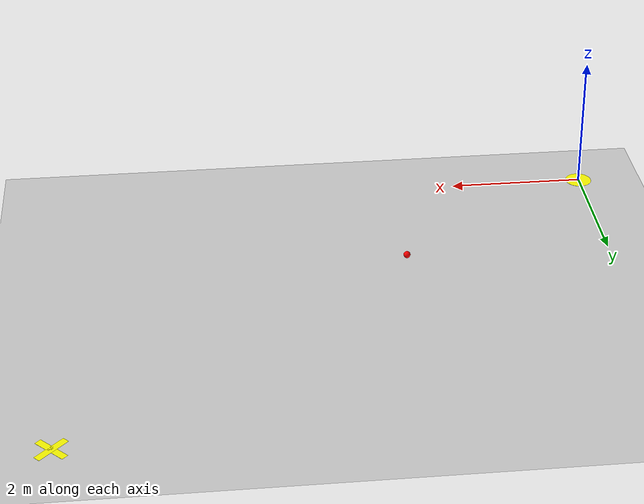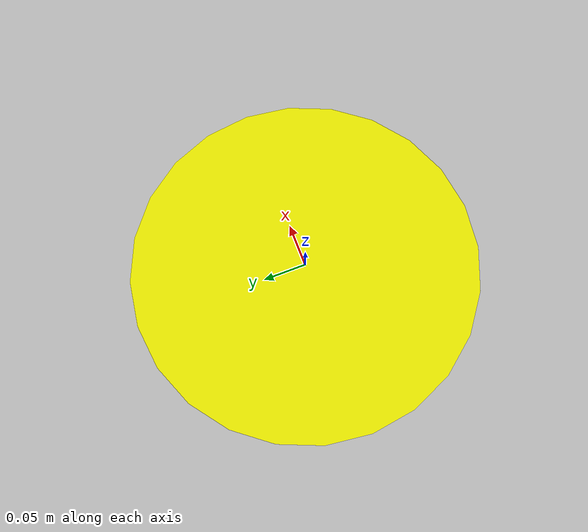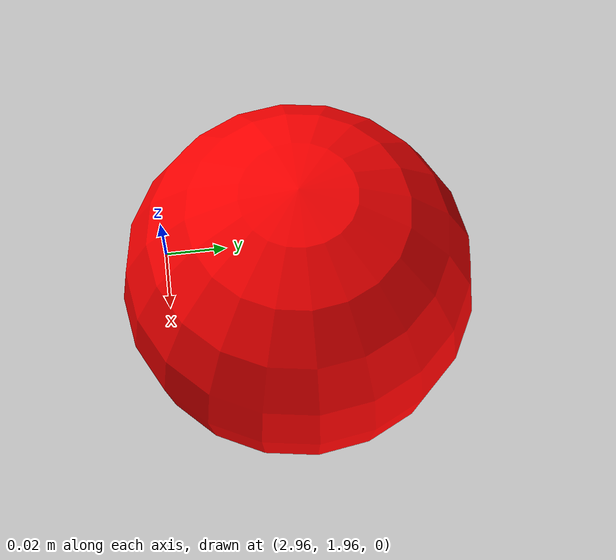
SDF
<sdf version="1.10">
 <world name="ball_tracker_world">
  <plugin filename="gz-sim-physics-system" name="gz::sim::systems::Physics"/>
  <plugin filename="gz-sim-user-commands-system" name="gz::sim::systems::UserCommands"/>
  <plugin filename="gz-sim-scene-broadcaster-system" name="gz::sim::systems::SceneBroadcaster"/>
  <plugin filename="gz-sim-sensors-system" name="gz::sim::systems::Sensors">
   <render_engine>ogre2</render_engine>
  </plugin>
  <plugin filename="gz-sim-imu-system" name="gz::sim::systems::Imu"/>
  <plugin filename="gz-sim-magnetometer-system" name="gz::sim::systems::Magnetometer"/>
  <plugin filename="gz-sim-navsat-system" name="gz::sim::systems::NavSat"/>
  <spherical_coordinates>
   <surface_model>EARTH_WGS84</surface_model>
   <latitude_deg>-25.33057507763572</latitude_deg>
   <longitude_deg>-57.51813474688503</longitude_deg>
   <elevation>80.0</elevation>
   <heading_deg>0</heading_deg>
  </spherical_coordinates>
  <physics name="1ms" type="ignored">
   <max_step_size>0.001</max_step_size>
   <real_time_factor>1</real_time_factor>
   <real_time_update_rate>1000</real_time_update_rate>
  </physics>
  <gravity>0 0 -9.8</gravity>
  <scene><ambient>0.4 0.4 0.4 1</ambient><background>0.7 0.7 0.7 1</background><shadows>true</shadows></scene>
  <model name="ground_plane">
   <static>true</static>
   <link name="link">
    <collision name="collision">
     <geometry><plane><normal>0 0 1</normal><size>100 100</size></plane></geometry>
    </collision>
    <visual name="visual">
     <geometry><plane><normal>0 0 1</normal><size>100 100</size></plane></geometry>
     <material><diffuse>0.8 0.8 0.8 1</diffuse></material>
    </visual>
   </link>
  </model>
  <model name="sphere_A">
   <static>true</static>
   <pose>3 2 0.05 0 0 0</pose>
   <link name="link">
    <collision name="collision"><geometry><sphere><radius>0.05</radius></sphere></geometry></collision>
    <visual name="visual">
     <geometry><sphere><radius>0.05</radius></sphere></geometry>
     <material><diffuse>1 0 0 1</diffuse></material>
    </visual>
   </link>
  </model>
  <model name="origin_marker">
   <static>true</static>
   <pose>0 0 0.001 0 0 0</pose>
   <link name="link">
    <visual name="visual">
     <geometry><cylinder><radius>0.2</radius><length>0.002</length></cylinder></geometry>
     <material><diffuse>1 1 0 1</diffuse></material>
    </visual>
   </link>
  </model>
  <model name="x_marker">
   <static>true</static>
   <pose>8 6 0.01 0 0 0</pose>
   <link name="link">
    <visual name="bar_1">
     <pose>0 0 0 0 0 0.785398</pose>
     <geometry><box><size>0.5 0.1 0.002</size></box></geometry>
     <material><diffuse>1 1 0 1</diffuse></material>
    </visual>
    <visual name="bar_2">
     <pose>0 0 0 0 0 -0.785398</pose>
     <geometry><box><size>0.5 0.1 0.002</size></box></geometry>
     <material><diffuse>1 1 0 1</diffuse></material>
    </visual>
   </link>
  </model>
  <light name="sun" type="directional">
   <pose>0 0 10 0 0 0</pose>
   <direction>-0.5 0.1 -0.9</direction>
   <diffuse>0.8 0.8 0.8 1</diffuse>
   <specular>0.2 0.2 0.2 1</specular>
  </light>
 </world>
</sdf>
